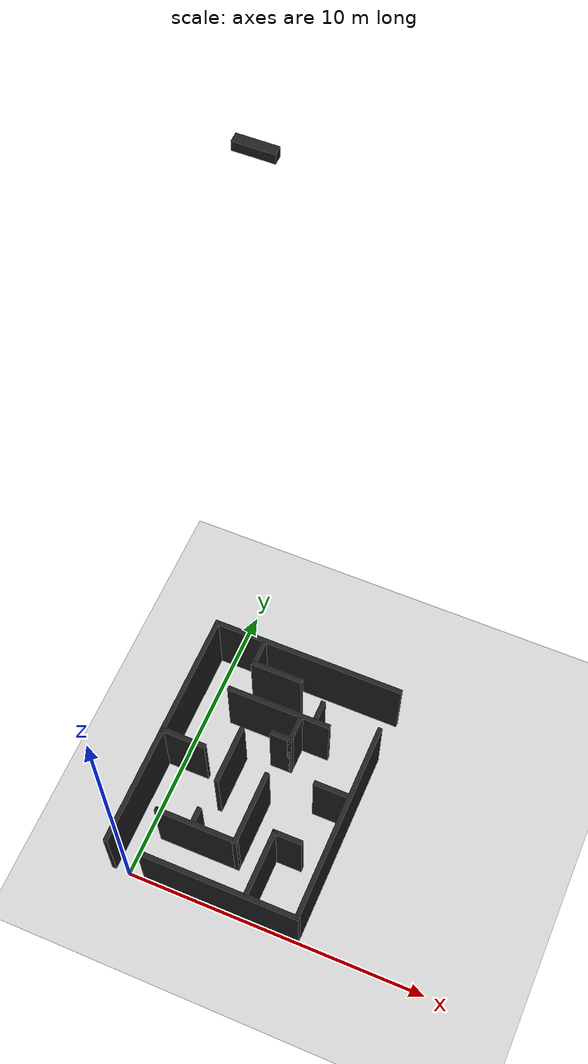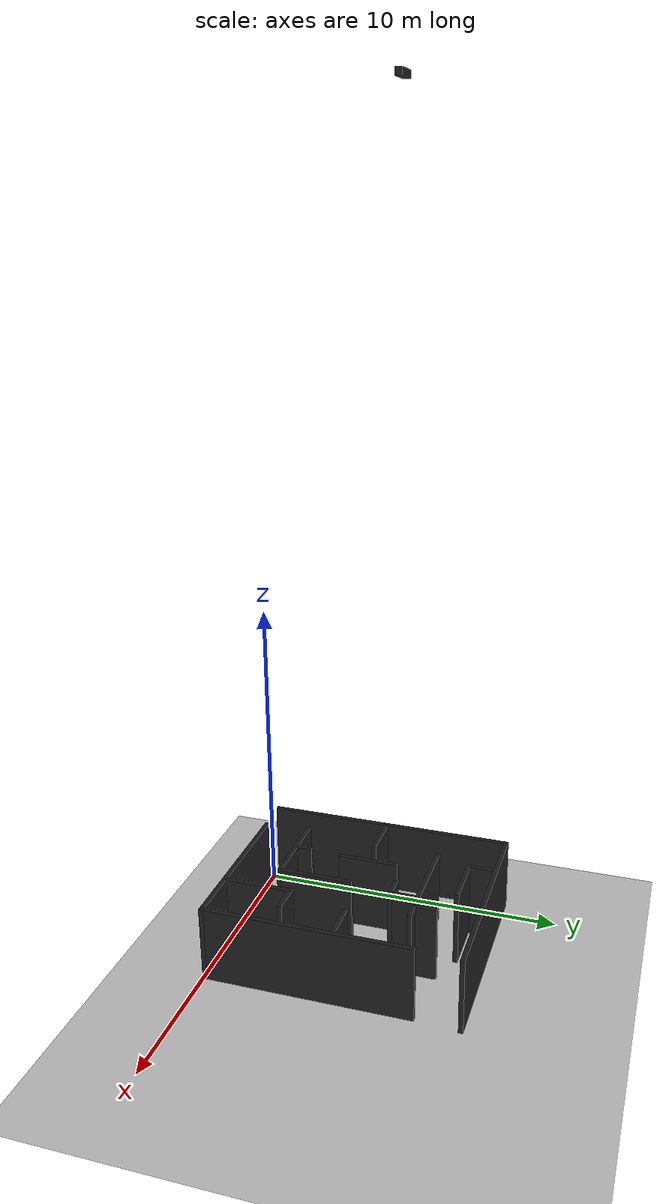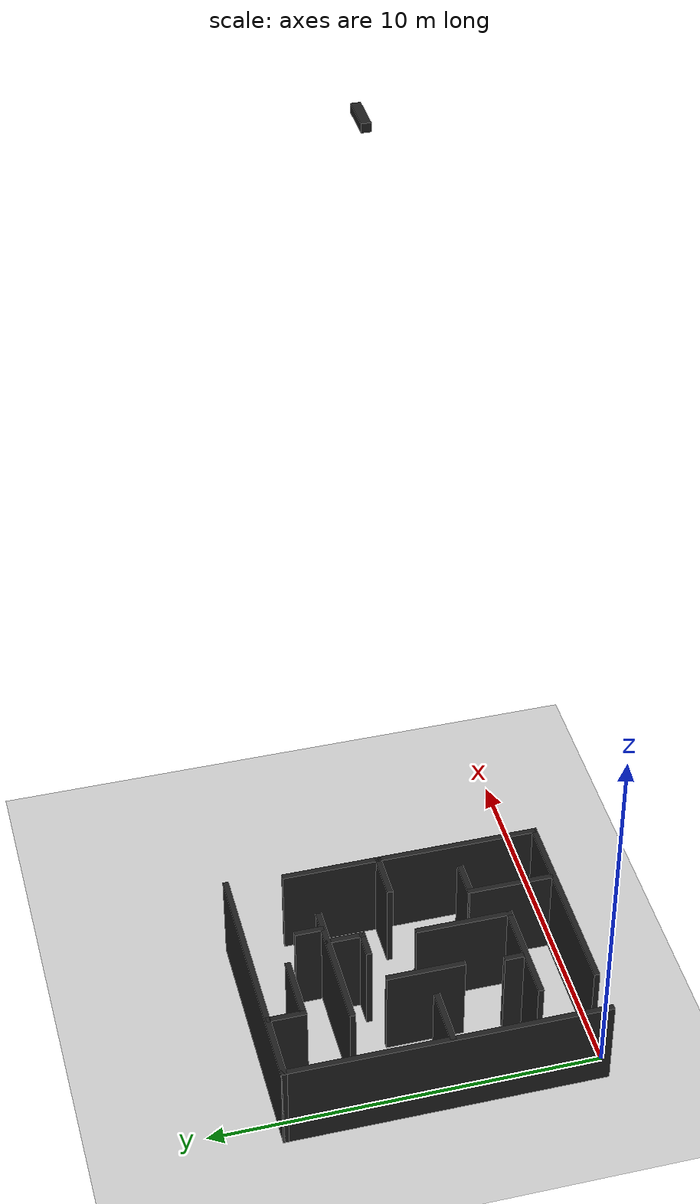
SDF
<sdf version="1.7">
 <world name="default">
  <light name="sun" type="directional">
   <pose>0 0 10 0 -0 0</pose>
   <diffuse>0.8 0.8 0.8 1</diffuse>
   <specular>0.2 0.2 0.2 1</specular>
   <attenuation>
    <range>1000</range>
    <constant>0.9</constant>
    <linear>0.01</linear>
    <quadratic>0.001</quadratic>
   </attenuation>
   <direction>-0.5 0.1 -0.9</direction>
   <spot><inner_angle>0</inner_angle><outer_angle>0</outer_angle><falloff>0</falloff></spot>
  </light>
  <model name="ground_plane">
   <static>1</static>
   <link name="link">
    <collision name="collision">
     <geometry><plane><normal>0 0 1</normal><size>100 100</size></plane></geometry>
     <surface><friction><ode><mu>100</mu><mu2>50</mu2></ode></friction></surface>
    </collision>
    <visual name="visual">
     <cast_shadows>0</cast_shadows>
     <geometry><plane><normal>0 0 1</normal><size>100 100</size></plane></geometry>
     <material>
      <script><uri>file://media/materials/scripts/gazebo.material</uri><name>Gazebo/Grey</name></script>
     </material>
    </visual>
   </link>
  </model>
  <gravity>0 0 -9.8</gravity>
  <magnetic_field>6e-06 2.3e-05 -4.2e-05</magnetic_field>
  <atmosphere type="adiabatic"/>
  <physics type="ode">
   <max_step_size>0.001</max_step_size>
   <real_time_factor>1</real_time_factor>
   <real_time_update_rate>1000</real_time_update_rate>
  </physics>
  <scene><ambient>0.4 0.4 0.4 1</ambient><background>0.7 0.7 0.7 1</background><shadows>1</shadows></scene>
  <spherical_coordinates>
   <surface_model>EARTH_WGS84</surface_model>
   <latitude_deg>0</latitude_deg>
   <longitude_deg>0</longitude_deg>
   <elevation>0</elevation>
   <heading_deg>0</heading_deg>
  </spherical_coordinates>
  <model name="obstacle_course_3">
   <pose>2.66094 7.37929 0 0 -0 1.57023</pose>
   <link name="Wall_12">
    <collision name="Wall_12_Collision">
     <geometry><box><size>8.25 0.15 2.5</size></box></geometry>
     <pose>0 0 1.25 0 -0 0</pose>
    </collision>
    <visual name="Wall_12_Visual">
     <pose>0 0 1.25 0 -0 0</pose>
     <geometry><box><size>8.25 0.15 2.5</size></box></geometry>
     <material>
      <script><uri>file://media/materials/scripts/gazebo.material</uri><name>Gazebo/Black</name></script>
      <ambient>1 1 1 1</ambient>
     </material>
     <meta><layer>0</layer></meta>
    </visual>
    <pose>-3.26629 3.175 0 0 -0 0</pose>
   </link>
   <link name="Wall_13">
    <collision name="Wall_13_Collision">
     <geometry><box><size>6.5 0.15 2.5</size></box></geometry>
     <pose>0 0 1.25 0 -0 0</pose>
    </collision>
    <visual name="Wall_13_Visual">
     <pose>0 0 1.25 0 -0 0</pose>
     <geometry><box><size>6.5 0.15 2.5</size></box></geometry>
     <material>
      <script><uri>file://media/materials/scripts/gazebo.material</uri><name>Gazebo/Black</name></script>
      <ambient>1 1 1 1</ambient>
     </material>
     <meta><layer>0</layer></meta>
    </visual>
    <pose>0.783705 -0 0 0 -0 -1.5708</pose>
   </link>
   <link name="Wall_19">
    <collision name="Wall_19_Collision">
     <geometry><box><size>2.5 0.15 2.5</size></box></geometry>
     <pose>0 0 1.25 0 -0 0</pose>
    </collision>
    <visual name="Wall_19_Visual">
     <pose>0 0 1.25 0 -0 0</pose>
     <geometry><box><size>2.5 0.15 2.5</size></box></geometry>
     <material>
      <script><uri>file://media/materials/scripts/gazebo.material</uri><name>Gazebo/Black</name></script>
      <ambient>1 1 1 1</ambient>
     </material>
     <meta><layer>0</layer></meta>
    </visual>
    <pose>-4.67213 -0.429146 0 0 -0 0</pose>
   </link>
   <link name="Wall_25">
    <collision name="Wall_25_Collision">
     <geometry><box><size>3.5 0.15 2.5</size></box></geometry>
     <pose>0 0 1.25 0 -0 0</pose>
    </collision>
    <visual name="Wall_25_Visual">
     <pose>0 0 1.25 0 -0 0</pose>
     <geometry><box><size>3.5 0.15 2.5</size></box></geometry>
     <material>
      <script><uri>file://media/materials/scripts/gazebo.material</uri><name>Gazebo/Black</name></script>
      <ambient>1 1 1 1</ambient>
     </material>
     <meta><layer>0</layer></meta>
    </visual>
    <pose>-1.22975 0.135775 0 0 -0 -1.5708</pose>
   </link>
   <link name="Wall_29">
    <collision name="Wall_29_Collision">
     <geometry><box><size>1 0.15 2.5</size></box></geometry>
     <pose>0 0 1.25 0 -0 0</pose>
    </collision>
    <visual name="Wall_29_Visual">
     <pose>0 0 1.25 0 -0 0</pose>
     <geometry><box><size>1 0.15 2.5</size></box></geometry>
     <material>
      <script><uri>file://media/materials/scripts/gazebo.material</uri><name>Gazebo/Black</name></script>
      <ambient>1 1 1 1</ambient>
     </material>
     <meta><layer>0</layer></meta>
    </visual>
    <pose>-5.11255 -1.8324 0 0 -0 -1.5708</pose>
   </link>
   <link name="Wall_38">
    <collision name="Wall_38_Collision">
     <geometry><box><size>0.75 0.15 2.5</size></box></geometry>
     <pose>0 0 1.25 0 -0 0</pose>
    </collision>
    <visual name="Wall_38_Visual">
     <pose>0 0 1.25 0 -0 0</pose>
     <geometry><box><size>0.75 0.15 2.5</size></box></geometry>
     <material>
      <script><uri>file://media/materials/scripts/gazebo.material</uri><name>Gazebo/Black</name></script>
      <ambient>1 1 1 1</ambient>
     </material>
     <meta><layer>0</layer></meta>
    </visual>
    <pose>-0.865131 -1.09258 0 0 -0 3.14159</pose>
   </link>
   <link name="Wall_4">
    <collision name="Wall_4_Collision">
     <geometry><box><size>5.25 0.15 2.5</size></box></geometry>
     <pose>0 0 1.25 0 -0 0</pose>
    </collision>
    <visual name="Wall_4_Visual">
     <pose>0 0 1.25 0 -0 0</pose>
     <geometry><box><size>5.25 0.15 2.5</size></box></geometry>
     <material>
      <script><uri>file://media/materials/scripts/gazebo.material</uri><name>Gazebo/Black</name></script>
      <ambient>1 1 1 1</ambient>
     </material>
     <meta><layer>0</layer></meta>
    </visual>
    <pose>-7.3163 -0.529344 0 0 -0 -1.5708</pose>
   </link>
   <link name="Wall_40">
    <collision name="Wall_40_Collision">
     <geometry><box><size>2.25 0.15 2.5</size></box></geometry>
     <pose>0 0 1.25 0 -0 0</pose>
    </collision>
    <visual name="Wall_40_Visual">
     <pose>0 0 1.25 0 -0 0</pose>
     <geometry><box><size>2.25 0.15 2.5</size></box></geometry>
     <material>
      <script><uri>file://media/materials/scripts/gazebo.material</uri><name>Gazebo/Black</name></script>
      <ambient>1 1 1 1</ambient>
     </material>
     <meta><layer>0</layer></meta>
    </visual>
    <pose>-6.16255 -1.4074 0 0 -0 3.14159</pose>
   </link>
   <link name="Wall_42">
    <collision name="Wall_42_Collision">
     <geometry><box><size>1.75 0.15 2.5</size></box></geometry>
     <pose>0 0 1.25 0 -0 0</pose>
    </collision>
    <visual name="Wall_42_Visual">
     <pose>0 0 1.25 0 -0 0</pose>
     <geometry><box><size>1.75 0.15 2.5</size></box></geometry>
     <material>
      <script><uri>file://media/materials/scripts/gazebo.material</uri><name>Gazebo/Black</name></script>
      <ambient>1 1 1 1</ambient>
     </material>
     <meta><layer>0</layer></meta>
    </visual>
    <pose>-0.11039 0.686868 0 0 -0 1.5708</pose>
   </link>
   <link name="Wall_44">
    <collision name="Wall_44_Collision">
     <geometry><box><size>1 0.15 2.5</size></box></geometry>
     <pose>0 0 1.25 0 -0 0</pose>
    </collision>
    <visual name="Wall_44_Visual">
     <pose>0 0 1.25 0 -0 0</pose>
     <geometry><box><size>1 0.15 2.5</size></box></geometry>
     <material>
      <script><uri>file://media/materials/scripts/gazebo.material</uri><name>Gazebo/Black</name></script>
      <ambient>1 1 1 1</ambient>
     </material>
     <meta><layer>0</layer></meta>
    </visual>
    <pose>0.31461 1.48687 0 0 -0 0</pose>
   </link>
   <link name="Wall_46">
    <collision name="Wall_46_Collision">
     <geometry><box><size>0.5 0.15 2.5</size></box></geometry>
     <pose>0 0 1.25 0 -0 0</pose>
    </collision>
    <visual name="Wall_46_Visual">
     <pose>0 0 1.25 0 -0 0</pose>
     <geometry><box><size>0.5 0.15 2.5</size></box></geometry>
     <material>
      <script><uri>file://media/materials/scripts/gazebo.material</uri><name>Gazebo/Black</name></script>
      <ambient>1 1 1 1</ambient>
     </material>
     <meta><layer>0</layer></meta>
    </visual>
    <pose>-5.53241 1.00623 0 0 -0 3.14159</pose>
   </link>
   <link name="Wall_5">
    <collision name="Wall_5_Collision">
     <geometry><box><size>6.75 0.15 2.5</size></box></geometry>
     <pose>0 0 1.25 0 -0 0</pose>
    </collision>
    <visual name="Wall_5_Visual">
     <pose>0 0 1.25 0 -0 0</pose>
     <geometry><box><size>6.75 0.15 2.5</size></box></geometry>
     <material>
      <script><uri>file://media/materials/scripts/gazebo.material</uri><name>Gazebo/Black</name></script>
      <ambient>1 1 1 1</ambient>
     </material>
     <meta><layer>0</layer></meta>
    </visual>
    <pose>-4.0163 -3.07934 0 0 -0 0</pose>
   </link>
   <link name="Wall_50">
    <collision name="Wall_50_Collision">
     <geometry><box><size>1 0.15 2.5</size></box></geometry>
     <pose>0 0 1.25 0 -0 0</pose>
    </collision>
    <visual name="Wall_50_Visual">
     <pose>0 0 1.25 0 -0 0</pose>
     <geometry><box><size>1 0.15 2.5</size></box></geometry>
     <material>
      <script><uri>file://media/materials/scripts/gazebo.material</uri><name>Gazebo/Black</name></script>
      <ambient>1 1 1 1</ambient>
     </material>
     <meta><layer>0</layer></meta>
    </visual>
    <pose>-1.68973 -0.637834 0 0 -0 3.14159</pose>
   </link>
   <link name="Wall_51">
    <collision name="Wall_51_Collision">
     <geometry><box><size>0.75 0.15 2.5</size></box></geometry>
     <pose>0 0 1.25 0 -0 0</pose>
    </collision>
    <visual name="Wall_51_Visual">
     <pose>0 0 1.25 0 -0 0</pose>
     <geometry><box><size>0.75 0.15 2.5</size></box></geometry>
     <material>
      <script><uri>file://media/materials/scripts/gazebo.material</uri><name>Gazebo/Black</name></script>
      <ambient>1 1 1 1</ambient>
     </material>
     <meta><layer>0</layer></meta>
    </visual>
    <pose>-2.11473 -0.337834 0 0 -0 1.5708</pose>
   </link>
   <link name="Wall_53">
    <collision name="Wall_53_Collision">
     <geometry><box><size>2 0.15 2.5</size></box></geometry>
     <pose>0 0 1.25 0 -0 0</pose>
    </collision>
    <visual name="Wall_53_Visual">
     <pose>0 0 1.25 0 -0 0</pose>
     <geometry><box><size>2 0.15 2.5</size></box></geometry>
     <material>
      <script><uri>file://media/materials/scripts/gazebo.material</uri><name>Gazebo/Black</name></script>
      <ambient>1 1 1 1</ambient>
     </material>
     <meta><layer>0</layer></meta>
    </visual>
    <pose>-3.3091 0.901292 0 0 -0 3.14159</pose>
   </link>
   <link name="Wall_63">
    <collision name="Wall_63_Collision">
     <geometry><box><size>1.5 0.15 2.5</size></box></geometry>
     <pose>0 0 1.25 0 -0 0</pose>
    </collision>
    <visual name="Wall_63_Visual">
     <pose>0 0 1.25 0 -0 0</pose>
     <geometry><box><size>1.5 0.15 2.5</size></box></geometry>
     <material>
      <script><uri>file://media/materials/scripts/gazebo.material</uri><name>Gazebo/Black</name></script>
      <ambient>1 1 1 1</ambient>
     </material>
     <meta><layer>0</layer></meta>
    </visual>
    <pose>-3.36354 2.45079 0 0 -0 1.5708</pose>
   </link>
   <link name="Wall_66">
    <collision name="Wall_66_Collision">
     <geometry><box><size>2.75 0.15 2.5</size></box></geometry>
     <pose>0 0 1.25 0 -0 0</pose>
    </collision>
    <visual name="Wall_66_Visual">
     <pose>0 0 1.25 0 -0 0</pose>
     <geometry><box><size>2.75 0.15 2.5</size></box></geometry>
     <material>
      <script><uri>file://media/materials/scripts/gazebo.material</uri><name>Gazebo/Black</name></script>
      <ambient>1 1 1 1</ambient>
     </material>
     <meta><layer>0</layer></meta>
    </visual>
    <pose>-5.84713 0.870854 0 0 -0 1.5708</pose>
   </link>
   <link name="Wall_69">
    <collision name="Wall_69_Collision">
     <geometry><box><size>1.25 0.15 2.5</size></box></geometry>
     <pose>0 0 1.25 0 -0 0</pose>
    </collision>
    <visual name="Wall_69_Visual">
     <pose>0 0 1.25 0 -0 0</pose>
     <geometry><box><size>1.25 0.15 2.5</size></box></geometry>
     <material>
      <script><uri>file://media/materials/scripts/gazebo.material</uri><name>Gazebo/Black</name></script>
      <ambient>1 1 1 1</ambient>
     </material>
     <meta><layer>0</layer></meta>
    </visual>
    <pose>-3.15366 -2.50146 0 0 -0 1.5708</pose>
   </link>
   <static>1</static>
  </model>
  <model name="overhead_camera">
   <link name="link_0">
    <inertial>
     <mass>1</mass>
     <inertia>
      <ixx>0.166667</ixx>
      <ixy>0</ixy>
      <ixz>0</ixz>
      <iyy>0.166667</iyy>
      <iyz>0</iyz>
      <izz>0.166667</izz>
     </inertia>
    </inertial>
    <pose>0 2e-06 4.4e-05 0 -0 0</pose>
    <visual name="visual">
     <geometry><box><size>0.8 0.2 0.2</size></box></geometry>
     <material>
      <lighting>1</lighting>
      <script><uri>file://media/materials/scripts/gazebo.material</uri><name>Gazebo/Black</name></script>
      <shader type="pixel"><normal_map>__default__</normal_map></shader>
      <ambient>0.3 0.3 0.3 1</ambient>
      <diffuse>0.7 0.7 0.7 1</diffuse>
      <specular>0.01 0.01 0.01 1</specular>
      <emissive>0 0 0 1</emissive>
     </material>
     <cast_shadows>0</cast_shadows>
    </visual>
    <collision name="collision">
     <geometry><box><size>0.8 0.2 0.2</size></box></geometry>
     <surface>
      <friction>
       <ode><mu>1</mu><mu2>1</mu2><fdir1>0 0 0</fdir1><slip1>0</slip1><slip2>0</slip2></ode>
       <torsional>
        <coefficient>1</coefficient>
        <patch_radius>0</patch_radius>
        <surface_radius>0</surface_radius>
        <use_patch_radius>1</use_patch_radius>
        <ode><slip>0</slip></ode>
       </torsional>
      </friction>
      <bounce><restitution_coefficient>0</restitution_coefficient><threshold>1e+06</threshold></bounce>
      <contact>
       <collide_without_contact>0</collide_without_contact>
       <collide_without_contact_bitmask>1</collide_without_contact_bitmask>
       <collide_bitmask>1</collide_bitmask>
       <ode>
        <soft_cfm>0</soft_cfm>
        <soft_erp>0.2</soft_erp>
        <kp>1e+13</kp>
        <kd>1</kd>
        <max_vel>0.01</max_vel>
        <min_depth>0</min_depth>
       </ode>
       <bullet>
        <split_impulse>1</split_impulse>
        <split_impulse_penetration_threshold>-0.01</split_impulse_penetration_threshold>
        <soft_cfm>0</soft_cfm>
        <soft_erp>0.2</soft_erp>
        <kp>1e+13</kp>
        <kd>1</kd>
       </bullet>
      </contact>
     </surface>
    </collision>
    <sensor name="upper_camera" type="camera">
     <pose>0 0 0 0 1.57 0</pose>
     <update_rate>30</update_rate>
     <visualize>1</visualize>
     <camera name="head">
      <horizontal_fov>1.0856</horizontal_fov>
      <image><width>1280</width><height>720</height><format>R8G8B8</format></image>
      <clip><near>0.03</near><far>100</far></clip>
      <noise><type>gaussian</type><mean>0</mean><stddev>0.007</stddev></noise>
     </camera>
     <plugin name="camera_controller" filename="libgazebo_ros_camera.so">
      <alwaysOn>1</alwaysOn>
      <updateRate>0.0</updateRate>
      <cameraName>rrbot/upper_camera</cameraName>
      <imageTopicName>image_raw</imageTopicName>
      <cameraInfoTopicName>camera_info</cameraInfoTopicName>
      <frameName>camera_link</frameName>
      <hackBaseline>0.07</hackBaseline>
      <distortionK1>0.0</distortionK1>
      <distortionK2>0.0</distortionK2>
      <distortionK3>0.0</distortionK3>
      <distortionT1>0.0</distortionT1>
      <distortionT2>0.0</distortionT2>
     </plugin>
    </sensor>
   </link>
   <static>1</static>
   <pose>2.7 5.4 25.4 0 -0 0</pose>
  </model>
 </world>
</sdf>
